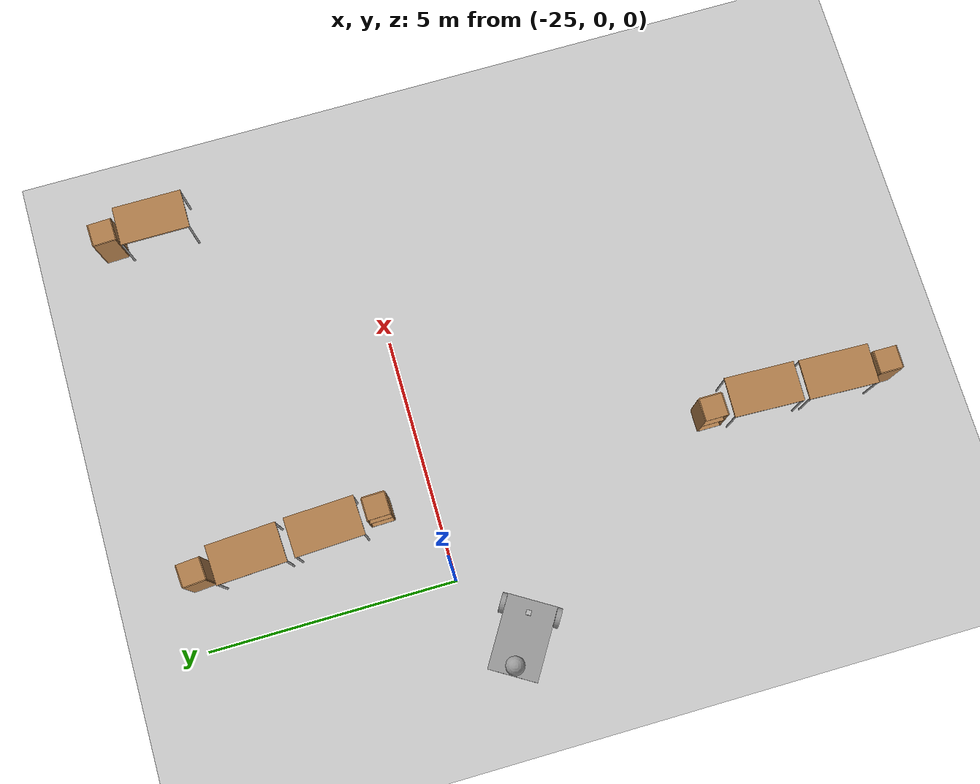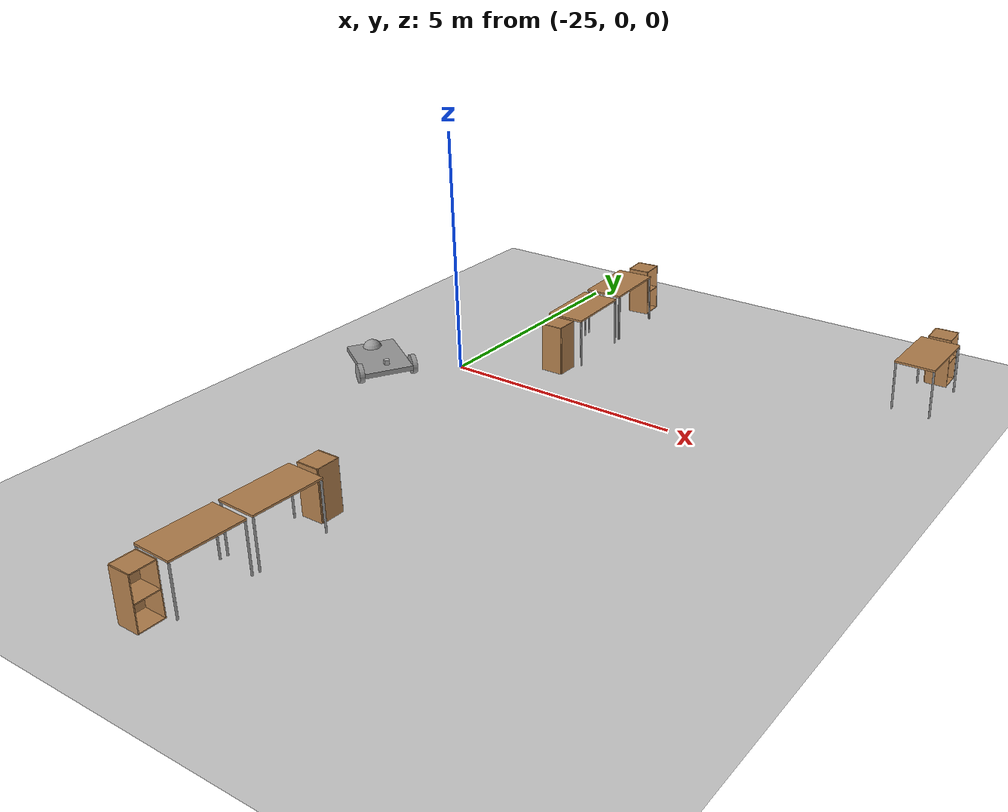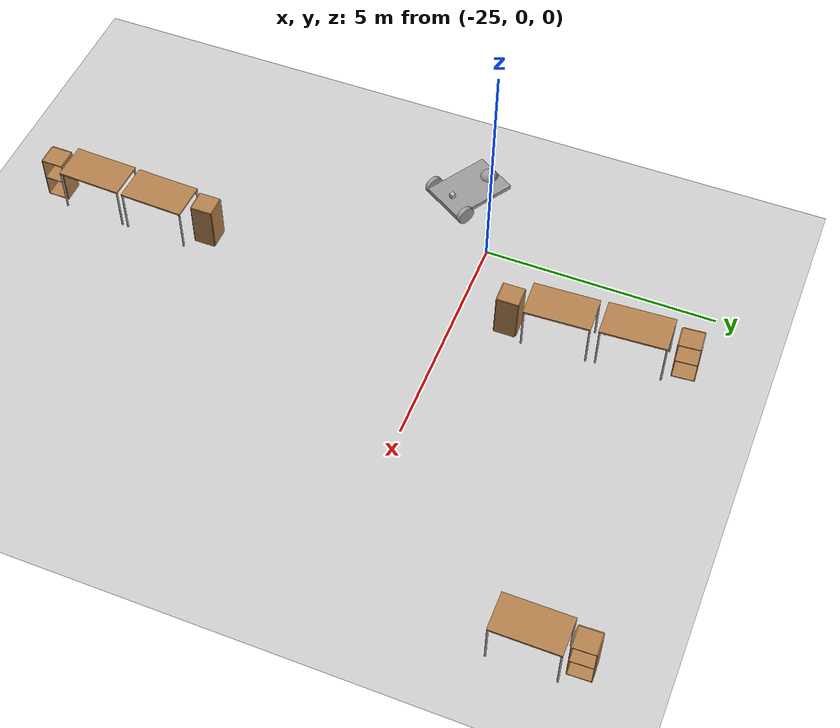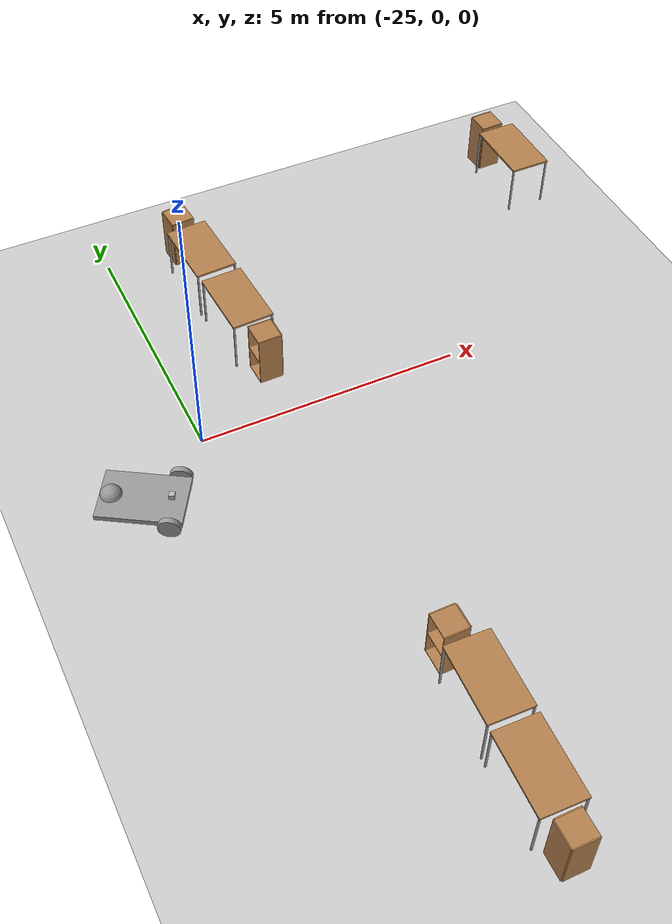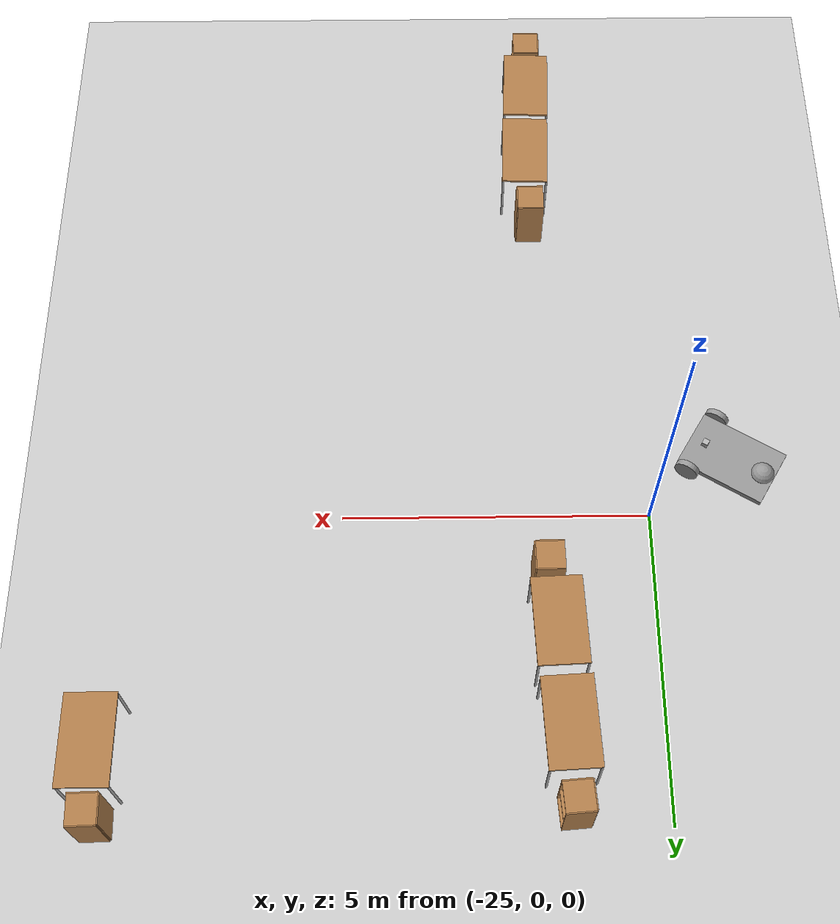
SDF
<sdf version="1.6">
 <world name="default">
  <model name="ground_plane">
   <static>1</static>
   <link name="link">
    <collision name="collision">
     <geometry><plane><normal>0 0 1</normal><size>100 100</size></plane></geometry>
     <surface><friction><ode><mu>100</mu><mu2>50</mu2></ode></friction></surface>
    </collision>
    <visual name="visual">
     <cast_shadows>0</cast_shadows>
     <geometry><plane><normal>0 0 1</normal><size>100 100</size></plane></geometry>
     <material>
      <script><uri>file://media/materials/scripts/gazebo.material</uri><name>Gazebo/Grey</name></script>
     </material>
    </visual>
   </link>
  </model>
  <model name="cabinet">
   <static>1</static>
   <link name="cabinet_bottom_plate">
    <inertial>
     <pose>0 0 -1 0 -0 0</pose>
     <inertia><ixx>2.05</ixx><ixy>0</ixy><ixz>0</ixz><iyy>2.05</iyy><iyz>0</iyz><izz>2.05</izz></inertia>
     <mass>25</mass>
    </inertial>
    <collision name="cabinet_bottom_plate_geom">
     <pose>0 0 0.01 0 -0 0</pose>
     <geometry><box><size>0.45 0.45 0.02</size></box></geometry>
    </collision>
    <visual name="cabinet_bottom_plate_geom_visual">
     <pose>0 0 0.01 0 -0 0</pose>
     <geometry><box><size>0.45 0.45 0.02</size></box></geometry>
     <material>
      <script><uri>file://media/materials/scripts/gazebo.material</uri><name>Gazebo/Wood</name></script>
     </material>
    </visual>
    <collision name="cabinet_bottom_plate_geom_cabinet_back_plate">
     <pose>0.235 0 0.51 0 -0 0</pose>
     <geometry><box><size>0.02 0.45 1.02</size></box></geometry>
    </collision>
    <visual name="cabinet_bottom_plate_geom_cabinet_back_plate_visual">
     <pose>0.235 0 0.51 0 -0 0</pose>
     <geometry><box><size>0.02 0.45 1.02</size></box></geometry>
     <material>
      <script><uri>file://media/materials/scripts/gazebo.material</uri><name>Gazebo/Wood</name></script>
     </material>
    </visual>
    <collision name="cabinet_bottom_plate_geom_cabinet_left_plate">
     <pose>0 0.235 0.51 0 -0 0</pose>
     <geometry><box><size>0.45 0.02 1.02</size></box></geometry>
    </collision>
    <visual name="cabinet_bottom_plate_geom_cabinet_left_plate_visual">
     <pose>0 0.235 0.51 0 -0 0</pose>
     <geometry><box><size>0.45 0.02 1.02</size></box></geometry>
     <material>
      <script><uri>file://media/materials/scripts/gazebo.material</uri><name>Gazebo/Wood</name></script>
     </material>
    </visual>
    <collision name="cabinet_bottom_plate_geom_cabinet_middle_plate">
     <pose>0 0 0.51 0 -0 0</pose>
     <geometry><box><size>0.45 0.45 0.02</size></box></geometry>
    </collision>
    <visual name="cabinet_bottom_plate_geom_cabinet_middle_plate_visual">
     <pose>0 0 0.51 0 -0 0</pose>
     <geometry><box><size>0.45 0.45 0.02</size></box></geometry>
     <material>
      <script><uri>file://media/materials/scripts/gazebo.material</uri><name>Gazebo/Wood</name></script>
     </material>
    </visual>
    <collision name="cabinet_bottom_plate_geom_cabinet_right_plate">
     <pose>0 -0.235 0.51 0 -0 0</pose>
     <geometry><box><size>0.45 0.02 1.02</size></box></geometry>
    </collision>
    <visual name="cabinet_bottom_plate_geom_cabinet_right_plate_visual">
     <pose>0 -0.235 0.51 0 -0 0</pose>
     <geometry><box><size>0.45 0.02 1.02</size></box></geometry>
     <material>
      <script><uri>file://media/materials/scripts/gazebo.material</uri><name>Gazebo/Wood</name></script>
     </material>
    </visual>
    <collision name="cabinet_bottom_plate_geom_cabinet_top_plate">
     <pose>0 0 1.01 0 -0 0</pose>
     <geometry><box><size>0.45 0.45 0.02</size></box></geometry>
    </collision>
    <visual name="cabinet_bottom_plate_geom_cabinet_top_plate_visual">
     <pose>0 0 1.01 0 -0 0</pose>
     <geometry><box><size>0.45 0.45 0.02</size></box></geometry>
     <material>
      <script><uri>file://media/materials/scripts/gazebo.material</uri><name>Gazebo/Wood</name></script>
     </material>
    </visual>
   </link>
   <pose>-23.2293 -5.67908 0 0 -0 0.000948</pose>
  </model>
  <model name="table">
   <static>0</static>
   <link name="link">
    <collision name="surface">
     <pose>0 0 1 0 -0 0</pose>
     <geometry><box><size>1.5 0.8 0.03</size></box></geometry>
     <surface><friction><ode><mu>0.6</mu><mu2>0.6</mu2></ode></friction></surface>
    </collision>
    <visual name="visual1">
     <pose>0 0 1 0 -0 0</pose>
     <geometry><box><size>1.4 0.8 0.04</size></box></geometry>
     <material>
      <script><uri>file://media/materials/scripts/gazebo.material</uri><name>Gazebo/Wood</name></script>
     </material>
    </visual>
    <collision name="front_left_leg">
     <pose>0.68 0.38 0.5 0 -0 0</pose>
     <geometry><cylinder><radius>0.02</radius><length>1</length></cylinder></geometry>
    </collision>
    <visual name="front_left_leg">
     <pose>0.68 0.38 0.5 0 -0 0</pose>
     <geometry><cylinder><radius>0.02</radius><length>1</length></cylinder></geometry>
     <material>
      <script><uri>file://media/materials/scripts/gazebo.material</uri><name>Gazebo/Grey</name></script>
     </material>
    </visual>
    <collision name="front_right_leg">
     <pose>0.68 -0.38 0.5 0 -0 0</pose>
     <geometry><cylinder><radius>0.02</radius><length>1</length></cylinder></geometry>
    </collision>
    <visual name="front_right_leg">
     <pose>0.68 -0.38 0.5 0 -0 0</pose>
     <geometry><cylinder><radius>0.02</radius><length>1</length></cylinder></geometry>
     <material>
      <script><uri>file://media/materials/scripts/gazebo.material</uri><name>Gazebo/Grey</name></script>
     </material>
    </visual>
    <collision name="back_right_leg">
     <pose>-0.68 -0.38 0.5 0 -0 0</pose>
     <geometry><cylinder><radius>0.02</radius><length>1</length></cylinder></geometry>
    </collision>
    <visual name="back_right_leg">
     <pose>-0.68 -0.38 0.5 0 -0 0</pose>
     <geometry><cylinder><radius>0.02</radius><length>1</length></cylinder></geometry>
     <material>
      <script><uri>file://media/materials/scripts/gazebo.material</uri><name>Gazebo/Grey</name></script>
     </material>
    </visual>
    <collision name="back_left_leg">
     <pose>-0.68 0.38 0.5 0 -0 0</pose>
     <geometry><cylinder><radius>0.02</radius><length>1</length></cylinder></geometry>
    </collision>
    <visual name="back_left_leg">
     <pose>-0.68 0.38 0.5 0 -0 0</pose>
     <geometry><cylinder><radius>0.02</radius><length>1</length></cylinder></geometry>
     <material>
      <script><uri>file://media/materials/scripts/gazebo.material</uri><name>Gazebo/Grey</name></script>
     </material>
    </visual>
    <inertial>
     <inertia><ixx>1</ixx><ixy>0</ixy><ixz>0</ixz><iyy>1</iyy><iyz>0</iyz><izz>1</izz></inertia>
     <mass>1</mass>
    </inertial>
   </link>
   <pose>-23.227 -8.22913 -1e-06 -0 1e-06 -1.60622</pose>
  </model>
  <model name="table_clone">
   <static>0</static>
   <link name="link">
    <collision name="surface">
     <pose>0 0 1 0 -0 0</pose>
     <geometry><box><size>1.5 0.8 0.03</size></box></geometry>
     <surface><friction><ode><mu>0.6</mu><mu2>0.6</mu2></ode></friction></surface>
    </collision>
    <visual name="visual1">
     <pose>0 0 1 0 -0 0</pose>
     <geometry><box><size>1.4 0.8 0.04</size></box></geometry>
     <material>
      <script><uri>file://media/materials/scripts/gazebo.material</uri><name>Gazebo/Wood</name></script>
     </material>
    </visual>
    <collision name="front_left_leg">
     <pose>0.68 0.38 0.5 0 -0 0</pose>
     <geometry><cylinder><radius>0.02</radius><length>1</length></cylinder></geometry>
    </collision>
    <visual name="front_left_leg">
     <pose>0.68 0.38 0.5 0 -0 0</pose>
     <geometry><cylinder><radius>0.02</radius><length>1</length></cylinder></geometry>
     <material>
      <script><uri>file://media/materials/scripts/gazebo.material</uri><name>Gazebo/Grey</name></script>
     </material>
    </visual>
    <collision name="front_right_leg">
     <pose>0.68 -0.38 0.5 0 -0 0</pose>
     <geometry><cylinder><radius>0.02</radius><length>1</length></cylinder></geometry>
    </collision>
    <visual name="front_right_leg">
     <pose>0.68 -0.38 0.5 0 -0 0</pose>
     <geometry><cylinder><radius>0.02</radius><length>1</length></cylinder></geometry>
     <material>
      <script><uri>file://media/materials/scripts/gazebo.material</uri><name>Gazebo/Grey</name></script>
     </material>
    </visual>
    <collision name="back_right_leg">
     <pose>-0.68 -0.38 0.5 0 -0 0</pose>
     <geometry><cylinder><radius>0.02</radius><length>1</length></cylinder></geometry>
    </collision>
    <visual name="back_right_leg">
     <pose>-0.68 -0.38 0.5 0 -0 0</pose>
     <geometry><cylinder><radius>0.02</radius><length>1</length></cylinder></geometry>
     <material>
      <script><uri>file://media/materials/scripts/gazebo.material</uri><name>Gazebo/Grey</name></script>
     </material>
    </visual>
    <collision name="back_left_leg">
     <pose>-0.68 0.38 0.5 0 -0 0</pose>
     <geometry><cylinder><radius>0.02</radius><length>1</length></cylinder></geometry>
    </collision>
    <visual name="back_left_leg">
     <pose>-0.68 0.38 0.5 0 -0 0</pose>
     <geometry><cylinder><radius>0.02</radius><length>1</length></cylinder></geometry>
     <material>
      <script><uri>file://media/materials/scripts/gazebo.material</uri><name>Gazebo/Grey</name></script>
     </material>
    </visual>
    <inertial>
     <inertia><ixx>1</ixx><ixy>0</ixy><ixz>0</ixz><iyy>1</iyy><iyz>0</iyz><izz>1</izz></inertia>
     <mass>1</mass>
    </inertial>
   </link>
   <pose>-23.4772 3.6839 -9e-06 1e-06 -0 1.62339</pose>
  </model>
  <model name="table_clone_0">
   <static>0</static>
   <link name="link">
    <collision name="surface">
     <pose>0 0 1 0 -0 0</pose>
     <geometry><box><size>1.5 0.8 0.03</size></box></geometry>
     <surface><friction><ode><mu>0.6</mu><mu2>0.6</mu2></ode></friction></surface>
    </collision>
    <visual name="visual1">
     <pose>0 0 1 0 -0 0</pose>
     <geometry><box><size>1.4 0.8 0.04</size></box></geometry>
     <material>
      <script><uri>file://media/materials/scripts/gazebo.material</uri><name>Gazebo/Wood</name></script>
     </material>
    </visual>
    <collision name="front_left_leg">
     <pose>0.68 0.38 0.5 0 -0 0</pose>
     <geometry><cylinder><radius>0.02</radius><length>1</length></cylinder></geometry>
    </collision>
    <visual name="front_left_leg">
     <pose>0.68 0.38 0.5 0 -0 0</pose>
     <geometry><cylinder><radius>0.02</radius><length>1</length></cylinder></geometry>
     <material>
      <script><uri>file://media/materials/scripts/gazebo.material</uri><name>Gazebo/Grey</name></script>
     </material>
    </visual>
    <collision name="front_right_leg">
     <pose>0.68 -0.38 0.5 0 -0 0</pose>
     <geometry><cylinder><radius>0.02</radius><length>1</length></cylinder></geometry>
    </collision>
    <visual name="front_right_leg">
     <pose>0.68 -0.38 0.5 0 -0 0</pose>
     <geometry><cylinder><radius>0.02</radius><length>1</length></cylinder></geometry>
     <material>
      <script><uri>file://media/materials/scripts/gazebo.material</uri><name>Gazebo/Grey</name></script>
     </material>
    </visual>
    <collision name="back_right_leg">
     <pose>-0.68 -0.38 0.5 0 -0 0</pose>
     <geometry><cylinder><radius>0.02</radius><length>1</length></cylinder></geometry>
    </collision>
    <visual name="back_right_leg">
     <pose>-0.68 -0.38 0.5 0 -0 0</pose>
     <geometry><cylinder><radius>0.02</radius><length>1</length></cylinder></geometry>
     <material>
      <script><uri>file://media/materials/scripts/gazebo.material</uri><name>Gazebo/Grey</name></script>
     </material>
    </visual>
    <collision name="back_left_leg">
     <pose>-0.68 0.38 0.5 0 -0 0</pose>
     <geometry><cylinder><radius>0.02</radius><length>1</length></cylinder></geometry>
    </collision>
    <visual name="back_left_leg">
     <pose>-0.68 0.38 0.5 0 -0 0</pose>
     <geometry><cylinder><radius>0.02</radius><length>1</length></cylinder></geometry>
     <material>
      <script><uri>file://media/materials/scripts/gazebo.material</uri><name>Gazebo/Grey</name></script>
     </material>
    </visual>
    <inertial>
     <inertia><ixx>1</ixx><ixy>0</ixy><ixz>0</ixz><iyy>1</iyy><iyz>0</iyz><izz>1</izz></inertia>
     <mass>1</mass>
    </inertial>
   </link>
   <pose>-23.1636 -6.73043 -8e-06 0 0 -1.60622</pose>
  </model>
  <model name="table_clone_clone">
   <static>0</static>
   <link name="link">
    <collision name="surface">
     <pose>0 0 1 0 -0 0</pose>
     <geometry><box><size>1.5 0.8 0.03</size></box></geometry>
     <surface><friction><ode><mu>0.6</mu><mu2>0.6</mu2></ode></friction></surface>
    </collision>
    <visual name="visual1">
     <pose>0 0 1 0 -0 0</pose>
     <geometry><box><size>1.4 0.8 0.04</size></box></geometry>
     <material>
      <script><uri>file://media/materials/scripts/gazebo.material</uri><name>Gazebo/Wood</name></script>
     </material>
    </visual>
    <collision name="front_left_leg">
     <pose>0.68 0.38 0.5 0 -0 0</pose>
     <geometry><cylinder><radius>0.02</radius><length>1</length></cylinder></geometry>
    </collision>
    <visual name="front_left_leg">
     <pose>0.68 0.38 0.5 0 -0 0</pose>
     <geometry><cylinder><radius>0.02</radius><length>1</length></cylinder></geometry>
     <material>
      <script><uri>file://media/materials/scripts/gazebo.material</uri><name>Gazebo/Grey</name></script>
     </material>
    </visual>
    <collision name="front_right_leg">
     <pose>0.68 -0.38 0.5 0 -0 0</pose>
     <geometry><cylinder><radius>0.02</radius><length>1</length></cylinder></geometry>
    </collision>
    <visual name="front_right_leg">
     <pose>0.68 -0.38 0.5 0 -0 0</pose>
     <geometry><cylinder><radius>0.02</radius><length>1</length></cylinder></geometry>
     <material>
      <script><uri>file://media/materials/scripts/gazebo.material</uri><name>Gazebo/Grey</name></script>
     </material>
    </visual>
    <collision name="back_right_leg">
     <pose>-0.68 -0.38 0.5 0 -0 0</pose>
     <geometry><cylinder><radius>0.02</radius><length>1</length></cylinder></geometry>
    </collision>
    <visual name="back_right_leg">
     <pose>-0.68 -0.38 0.5 0 -0 0</pose>
     <geometry><cylinder><radius>0.02</radius><length>1</length></cylinder></geometry>
     <material>
      <script><uri>file://media/materials/scripts/gazebo.material</uri><name>Gazebo/Grey</name></script>
     </material>
    </visual>
    <collision name="back_left_leg">
     <pose>-0.68 0.38 0.5 0 -0 0</pose>
     <geometry><cylinder><radius>0.02</radius><length>1</length></cylinder></geometry>
    </collision>
    <visual name="back_left_leg">
     <pose>-0.68 0.38 0.5 0 -0 0</pose>
     <geometry><cylinder><radius>0.02</radius><length>1</length></cylinder></geometry>
     <material>
      <script><uri>file://media/materials/scripts/gazebo.material</uri><name>Gazebo/Grey</name></script>
     </material>
    </visual>
    <inertial>
     <inertia><ixx>1</ixx><ixy>0</ixy><ixz>0</ixz><iyy>1</iyy><iyz>0</iyz><izz>1</izz></inertia>
     <mass>1</mass>
    </inertial>
   </link>
   <pose>-23.3855 2.13103 -2e-06 0 -0 1.61497</pose>
  </model>
  <model name="cabinet_clone">
   <static>1</static>
   <link name="cabinet_bottom_plate">
    <inertial>
     <pose>0 0 -1 0 -0 0</pose>
     <inertia><ixx>2.05</ixx><ixy>0</ixy><ixz>0</ixz><iyy>2.05</iyy><iyz>0</iyz><izz>2.05</izz></inertia>
     <mass>25</mass>
    </inertial>
    <collision name="cabinet_bottom_plate_geom">
     <pose>0 0 0.01 0 -0 0</pose>
     <geometry><box><size>0.45 0.45 0.02</size></box></geometry>
    </collision>
    <visual name="cabinet_bottom_plate_geom_visual">
     <pose>0 0 0.01 0 -0 0</pose>
     <geometry><box><size>0.45 0.45 0.02</size></box></geometry>
     <material>
      <script><uri>file://media/materials/scripts/gazebo.material</uri><name>Gazebo/Wood</name></script>
     </material>
    </visual>
    <collision name="cabinet_bottom_plate_geom_cabinet_back_plate">
     <pose>0.235 0 0.51 0 -0 0</pose>
     <geometry><box><size>0.02 0.45 1.02</size></box></geometry>
    </collision>
    <visual name="cabinet_bottom_plate_geom_cabinet_back_plate_visual">
     <pose>0.235 0 0.51 0 -0 0</pose>
     <geometry><box><size>0.02 0.45 1.02</size></box></geometry>
     <material>
      <script><uri>file://media/materials/scripts/gazebo.material</uri><name>Gazebo/Wood</name></script>
     </material>
    </visual>
    <collision name="cabinet_bottom_plate_geom_cabinet_left_plate">
     <pose>0 0.235 0.51 0 -0 0</pose>
     <geometry><box><size>0.45 0.02 1.02</size></box></geometry>
    </collision>
    <visual name="cabinet_bottom_plate_geom_cabinet_left_plate_visual">
     <pose>0 0.235 0.51 0 -0 0</pose>
     <geometry><box><size>0.45 0.02 1.02</size></box></geometry>
     <material>
      <script><uri>file://media/materials/scripts/gazebo.material</uri><name>Gazebo/Wood</name></script>
     </material>
    </visual>
    <collision name="cabinet_bottom_plate_geom_cabinet_middle_plate">
     <pose>0 0 0.51 0 -0 0</pose>
     <geometry><box><size>0.45 0.45 0.02</size></box></geometry>
    </collision>
    <visual name="cabinet_bottom_plate_geom_cabinet_middle_plate_visual">
     <pose>0 0 0.51 0 -0 0</pose>
     <geometry><box><size>0.45 0.45 0.02</size></box></geometry>
     <material>
      <script><uri>file://media/materials/scripts/gazebo.material</uri><name>Gazebo/Wood</name></script>
     </material>
    </visual>
    <collision name="cabinet_bottom_plate_geom_cabinet_right_plate">
     <pose>0 -0.235 0.51 0 -0 0</pose>
     <geometry><box><size>0.45 0.02 1.02</size></box></geometry>
    </collision>
    <visual name="cabinet_bottom_plate_geom_cabinet_right_plate_visual">
     <pose>0 -0.235 0.51 0 -0 0</pose>
     <geometry><box><size>0.45 0.02 1.02</size></box></geometry>
     <material>
      <script><uri>file://media/materials/scripts/gazebo.material</uri><name>Gazebo/Wood</name></script>
     </material>
    </visual>
    <collision name="cabinet_bottom_plate_geom_cabinet_top_plate">
     <pose>0 0 1.01 0 -0 0</pose>
     <geometry><box><size>0.45 0.45 0.02</size></box></geometry>
    </collision>
    <visual name="cabinet_bottom_plate_geom_cabinet_top_plate_visual">
     <pose>0 0 1.01 0 -0 0</pose>
     <geometry><box><size>0.45 0.45 0.02</size></box></geometry>
     <material>
      <script><uri>file://media/materials/scripts/gazebo.material</uri><name>Gazebo/Wood</name></script>
     </material>
    </visual>
   </link>
   <pose>-23.5321 4.76626 0.017437 0 0 -3.06279</pose>
  </model>
  <model name="cabinet_clone_clone">
   <static>1</static>
   <link name="cabinet_bottom_plate">
    <inertial>
     <pose>0 0 -1 0 -0 0</pose>
     <inertia><ixx>2.05</ixx><ixy>0</ixy><ixz>0</ixz><iyy>2.05</iyy><iyz>0</iyz><izz>2.05</izz></inertia>
     <mass>25</mass>
    </inertial>
    <collision name="cabinet_bottom_plate_geom">
     <pose>0 0 0.01 0 -0 0</pose>
     <geometry><box><size>0.45 0.45 0.02</size></box></geometry>
    </collision>
    <visual name="cabinet_bottom_plate_geom_visual">
     <pose>0 0 0.01 0 -0 0</pose>
     <geometry><box><size>0.45 0.45 0.02</size></box></geometry>
     <material>
      <script><uri>file://media/materials/scripts/gazebo.material</uri><name>Gazebo/Wood</name></script>
     </material>
    </visual>
    <collision name="cabinet_bottom_plate_geom_cabinet_back_plate">
     <pose>0.235 0 0.51 0 -0 0</pose>
     <geometry><box><size>0.02 0.45 1.02</size></box></geometry>
    </collision>
    <visual name="cabinet_bottom_plate_geom_cabinet_back_plate_visual">
     <pose>0.235 0 0.51 0 -0 0</pose>
     <geometry><box><size>0.02 0.45 1.02</size></box></geometry>
     <material>
      <script><uri>file://media/materials/scripts/gazebo.material</uri><name>Gazebo/Wood</name></script>
     </material>
    </visual>
    <collision name="cabinet_bottom_plate_geom_cabinet_left_plate">
     <pose>0 0.235 0.51 0 -0 0</pose>
     <geometry><box><size>0.45 0.02 1.02</size></box></geometry>
    </collision>
    <visual name="cabinet_bottom_plate_geom_cabinet_left_plate_visual">
     <pose>0 0.235 0.51 0 -0 0</pose>
     <geometry><box><size>0.45 0.02 1.02</size></box></geometry>
     <material>
      <script><uri>file://media/materials/scripts/gazebo.material</uri><name>Gazebo/Wood</name></script>
     </material>
    </visual>
    <collision name="cabinet_bottom_plate_geom_cabinet_middle_plate">
     <pose>0 0 0.51 0 -0 0</pose>
     <geometry><box><size>0.45 0.45 0.02</size></box></geometry>
    </collision>
    <visual name="cabinet_bottom_plate_geom_cabinet_middle_plate_visual">
     <pose>0 0 0.51 0 -0 0</pose>
     <geometry><box><size>0.45 0.45 0.02</size></box></geometry>
     <material>
      <script><uri>file://media/materials/scripts/gazebo.material</uri><name>Gazebo/Wood</name></script>
     </material>
    </visual>
    <collision name="cabinet_bottom_plate_geom_cabinet_right_plate">
     <pose>0 -0.235 0.51 0 -0 0</pose>
     <geometry><box><size>0.45 0.02 1.02</size></box></geometry>
    </collision>
    <visual name="cabinet_bottom_plate_geom_cabinet_right_plate_visual">
     <pose>0 -0.235 0.51 0 -0 0</pose>
     <geometry><box><size>0.45 0.02 1.02</size></box></geometry>
     <material>
      <script><uri>file://media/materials/scripts/gazebo.material</uri><name>Gazebo/Wood</name></script>
     </material>
    </visual>
    <collision name="cabinet_bottom_plate_geom_cabinet_top_plate">
     <pose>0 0 1.01 0 -0 0</pose>
     <geometry><box><size>0.45 0.45 0.02</size></box></geometry>
    </collision>
    <visual name="cabinet_bottom_plate_geom_cabinet_top_plate_visual">
     <pose>0 0 1.01 0 -0 0</pose>
     <geometry><box><size>0.45 0.45 0.02</size></box></geometry>
     <material>
      <script><uri>file://media/materials/scripts/gazebo.material</uri><name>Gazebo/Wood</name></script>
     </material>
    </visual>
   </link>
   <pose>-23.2868 1.07698 0.017437 -0.01053 -0.000628 0.017723</pose>
  </model>
  <model name="cabinet_clone_clone_0">
   <static>1</static>
   <link name="cabinet_bottom_plate">
    <inertial>
     <pose>0 0 -1 0 -0 0</pose>
     <inertia><ixx>2.05</ixx><ixy>0</ixy><ixz>0</ixz><iyy>2.05</iyy><iyz>0</iyz><izz>2.05</izz></inertia>
     <mass>25</mass>
    </inertial>
    <collision name="cabinet_bottom_plate_geom">
     <pose>0 0 0.01 0 -0 0</pose>
     <geometry><box><size>0.45 0.45 0.02</size></box></geometry>
    </collision>
    <visual name="cabinet_bottom_plate_geom_visual">
     <pose>0 0 0.01 0 -0 0</pose>
     <geometry><box><size>0.45 0.45 0.02</size></box></geometry>
     <material>
      <script><uri>file://media/materials/scripts/gazebo.material</uri><name>Gazebo/Wood</name></script>
     </material>
    </visual>
    <collision name="cabinet_bottom_plate_geom_cabinet_back_plate">
     <pose>0.235 0 0.51 0 -0 0</pose>
     <geometry><box><size>0.02 0.45 1.02</size></box></geometry>
    </collision>
    <visual name="cabinet_bottom_plate_geom_cabinet_back_plate_visual">
     <pose>0.235 0 0.51 0 -0 0</pose>
     <geometry><box><size>0.02 0.45 1.02</size></box></geometry>
     <material>
      <script><uri>file://media/materials/scripts/gazebo.material</uri><name>Gazebo/Wood</name></script>
     </material>
    </visual>
    <collision name="cabinet_bottom_plate_geom_cabinet_left_plate">
     <pose>0 0.235 0.51 0 -0 0</pose>
     <geometry><box><size>0.45 0.02 1.02</size></box></geometry>
    </collision>
    <visual name="cabinet_bottom_plate_geom_cabinet_left_plate_visual">
     <pose>0 0.235 0.51 0 -0 0</pose>
     <geometry><box><size>0.45 0.02 1.02</size></box></geometry>
     <material>
      <script><uri>file://media/materials/scripts/gazebo.material</uri><name>Gazebo/Wood</name></script>
     </material>
    </visual>
    <collision name="cabinet_bottom_plate_geom_cabinet_middle_plate">
     <pose>0 0 0.51 0 -0 0</pose>
     <geometry><box><size>0.45 0.45 0.02</size></box></geometry>
    </collision>
    <visual name="cabinet_bottom_plate_geom_cabinet_middle_plate_visual">
     <pose>0 0 0.51 0 -0 0</pose>
     <geometry><box><size>0.45 0.45 0.02</size></box></geometry>
     <material>
      <script><uri>file://media/materials/scripts/gazebo.material</uri><name>Gazebo/Wood</name></script>
     </material>
    </visual>
    <collision name="cabinet_bottom_plate_geom_cabinet_right_plate">
     <pose>0 -0.235 0.51 0 -0 0</pose>
     <geometry><box><size>0.45 0.02 1.02</size></box></geometry>
    </collision>
    <visual name="cabinet_bottom_plate_geom_cabinet_right_plate_visual">
     <pose>0 -0.235 0.51 0 -0 0</pose>
     <geometry><box><size>0.45 0.02 1.02</size></box></geometry>
     <material>
      <script><uri>file://media/materials/scripts/gazebo.material</uri><name>Gazebo/Wood</name></script>
     </material>
    </visual>
    <collision name="cabinet_bottom_plate_geom_cabinet_top_plate">
     <pose>0 0 1.01 0 -0 0</pose>
     <geometry><box><size>0.45 0.45 0.02</size></box></geometry>
    </collision>
    <visual name="cabinet_bottom_plate_geom_cabinet_top_plate_visual">
     <pose>0 0 1.01 0 -0 0</pose>
     <geometry><box><size>0.45 0.45 0.02</size></box></geometry>
     <material>
      <script><uri>file://media/materials/scripts/gazebo.material</uri><name>Gazebo/Wood</name></script>
     </material>
    </visual>
   </link>
   <pose>-16.504 4.88239 0.017437 0 0 -3.10692</pose>
  </model>
  <model name="table_clone_clone_0">
   <static>0</static>
   <link name="link">
    <collision name="surface">
     <pose>0 0 1 0 -0 0</pose>
     <geometry><box><size>1.5 0.8 0.03</size></box></geometry>
     <surface><friction><ode><mu>0.6</mu><mu2>0.6</mu2></ode></friction></surface>
    </collision>
    <visual name="visual1">
     <pose>0 0 1 0 -0 0</pose>
     <geometry><box><size>1.4 0.8 0.04</size></box></geometry>
     <material>
      <script><uri>file://media/materials/scripts/gazebo.material</uri><name>Gazebo/Wood</name></script>
     </material>
    </visual>
    <collision name="front_left_leg">
     <pose>0.68 0.38 0.5 0 -0 0</pose>
     <geometry><cylinder><radius>0.02</radius><length>1</length></cylinder></geometry>
    </collision>
    <visual name="front_left_leg">
     <pose>0.68 0.38 0.5 0 -0 0</pose>
     <geometry><cylinder><radius>0.02</radius><length>1</length></cylinder></geometry>
     <material>
      <script><uri>file://media/materials/scripts/gazebo.material</uri><name>Gazebo/Grey</name></script>
     </material>
    </visual>
    <collision name="front_right_leg">
     <pose>0.68 -0.38 0.5 0 -0 0</pose>
     <geometry><cylinder><radius>0.02</radius><length>1</length></cylinder></geometry>
    </collision>
    <visual name="front_right_leg">
     <pose>0.68 -0.38 0.5 0 -0 0</pose>
     <geometry><cylinder><radius>0.02</radius><length>1</length></cylinder></geometry>
     <material>
      <script><uri>file://media/materials/scripts/gazebo.material</uri><name>Gazebo/Grey</name></script>
     </material>
    </visual>
    <collision name="back_right_leg">
     <pose>-0.68 -0.38 0.5 0 -0 0</pose>
     <geometry><cylinder><radius>0.02</radius><length>1</length></cylinder></geometry>
    </collision>
    <visual name="back_right_leg">
     <pose>-0.68 -0.38 0.5 0 -0 0</pose>
     <geometry><cylinder><radius>0.02</radius><length>1</length></cylinder></geometry>
     <material>
      <script><uri>file://media/materials/scripts/gazebo.material</uri><name>Gazebo/Grey</name></script>
     </material>
    </visual>
    <collision name="back_left_leg">
     <pose>-0.68 0.38 0.5 0 -0 0</pose>
     <geometry><cylinder><radius>0.02</radius><length>1</length></cylinder></geometry>
    </collision>
    <visual name="back_left_leg">
     <pose>-0.68 0.38 0.5 0 -0 0</pose>
     <geometry><cylinder><radius>0.02</radius><length>1</length></cylinder></geometry>
     <material>
      <script><uri>file://media/materials/scripts/gazebo.material</uri><name>Gazebo/Grey</name></script>
     </material>
    </visual>
    <inertial>
     <inertia><ixx>1</ixx><ixy>0</ixy><ixz>0</ixz><iyy>1</iyy><iyz>0</iyz><izz>1</izz></inertia>
     <mass>1</mass>
    </inertial>
   </link>
   <pose>-16.4627 3.87988 -1e-06 -1e-06 1e-06 1.57136</pose>
  </model>
  <model name="cabinet_clone_0">
   <static>1</static>
   <link name="cabinet_bottom_plate">
    <inertial>
     <pose>0 0 -1 0 -0 0</pose>
     <inertia><ixx>2.05</ixx><ixy>0</ixy><ixz>0</ixz><iyy>2.05</iyy><iyz>0</iyz><izz>2.05</izz></inertia>
     <mass>25</mass>
    </inertial>
    <collision name="cabinet_bottom_plate_geom">
     <pose>0 0 0.01 0 -0 0</pose>
     <geometry><box><size>0.45 0.45 0.02</size></box></geometry>
    </collision>
    <visual name="cabinet_bottom_plate_geom_visual">
     <pose>0 0 0.01 0 -0 0</pose>
     <geometry><box><size>0.45 0.45 0.02</size></box></geometry>
     <material>
      <script><uri>file://media/materials/scripts/gazebo.material</uri><name>Gazebo/Wood</name></script>
     </material>
    </visual>
    <collision name="cabinet_bottom_plate_geom_cabinet_back_plate">
     <pose>0.235 0 0.51 0 -0 0</pose>
     <geometry><box><size>0.02 0.45 1.02</size></box></geometry>
    </collision>
    <visual name="cabinet_bottom_plate_geom_cabinet_back_plate_visual">
     <pose>0.235 0 0.51 0 -0 0</pose>
     <geometry><box><size>0.02 0.45 1.02</size></box></geometry>
     <material>
      <script><uri>file://media/materials/scripts/gazebo.material</uri><name>Gazebo/Wood</name></script>
     </material>
    </visual>
    <collision name="cabinet_bottom_plate_geom_cabinet_left_plate">
     <pose>0 0.235 0.51 0 -0 0</pose>
     <geometry><box><size>0.45 0.02 1.02</size></box></geometry>
    </collision>
    <visual name="cabinet_bottom_plate_geom_cabinet_left_plate_visual">
     <pose>0 0.235 0.51 0 -0 0</pose>
     <geometry><box><size>0.45 0.02 1.02</size></box></geometry>
     <material>
      <script><uri>file://media/materials/scripts/gazebo.material</uri><name>Gazebo/Wood</name></script>
     </material>
    </visual>
    <collision name="cabinet_bottom_plate_geom_cabinet_middle_plate">
     <pose>0 0 0.51 0 -0 0</pose>
     <geometry><box><size>0.45 0.45 0.02</size></box></geometry>
    </collision>
    <visual name="cabinet_bottom_plate_geom_cabinet_middle_plate_visual">
     <pose>0 0 0.51 0 -0 0</pose>
     <geometry><box><size>0.45 0.45 0.02</size></box></geometry>
     <material>
      <script><uri>file://media/materials/scripts/gazebo.material</uri><name>Gazebo/Wood</name></script>
     </material>
    </visual>
    <collision name="cabinet_bottom_plate_geom_cabinet_right_plate">
     <pose>0 -0.235 0.51 0 -0 0</pose>
     <geometry><box><size>0.45 0.02 1.02</size></box></geometry>
    </collision>
    <visual name="cabinet_bottom_plate_geom_cabinet_right_plate_visual">
     <pose>0 -0.235 0.51 0 -0 0</pose>
     <geometry><box><size>0.45 0.02 1.02</size></box></geometry>
     <material>
      <script><uri>file://media/materials/scripts/gazebo.material</uri><name>Gazebo/Wood</name></script>
     </material>
    </visual>
    <collision name="cabinet_bottom_plate_geom_cabinet_top_plate">
     <pose>0 0 1.01 0 -0 0</pose>
     <geometry><box><size>0.45 0.45 0.02</size></box></geometry>
    </collision>
    <visual name="cabinet_bottom_plate_geom_cabinet_top_plate_visual">
     <pose>0 0 1.01 0 -0 0</pose>
     <geometry><box><size>0.45 0.45 0.02</size></box></geometry>
     <material>
      <script><uri>file://media/materials/scripts/gazebo.material</uri><name>Gazebo/Wood</name></script>
     </material>
    </visual>
   </link>
   <pose>-23.2584 -9.22941 0 0 -0 3.13215</pose>
  </model>
  <model name="chassis_robot_with_camera_clone">
   <link name="link_0">
    <pose>0.207166 0.002354 -0.014274 0 -0 0</pose>
    <inertial>
     <mass>1</mass>
     <inertia>
      <ixx>0.166667</ixx>
      <ixy>0</ixy>
      <ixz>0</ixz>
      <iyy>0.166667</iyy>
      <iyz>0</iyz>
      <izz>0.166667</izz>
     </inertia>
    </inertial>
    <visual name="visual">
     <geometry><box><size>1.5 1 0.1</size></box></geometry>
     <material>
      <lighting>1</lighting>
      <script><uri>file://media/materials/scripts/gazebo.material</uri><name>Gazebo/Grey</name></script>
      <ambient>0.3 0.3 0.3 1</ambient>
      <diffuse>0.7 0.7 0.7 1</diffuse>
      <specular>0.01 0.01 0.01 1</specular>
      <emissive>0 0 0 1</emissive>
      <shader type="vertex"><normal_map>__default__</normal_map></shader>
     </material>
    </visual>
    <collision name="collision">
     <geometry><box><size>1.5 1 0.1</size></box></geometry>
     <surface>
      <friction>
       <ode><mu>1</mu><mu2>1</mu2><fdir1>0 0 0</fdir1><slip1>0</slip1><slip2>0</slip2></ode>
       <torsional>
        <coefficient>1</coefficient>
        <patch_radius>0</patch_radius>
        <surface_radius>0</surface_radius>
        <use_patch_radius>1</use_patch_radius>
        <ode><slip>0</slip></ode>
       </torsional>
      </friction>
      <bounce><restitution_coefficient>0</restitution_coefficient><threshold>1e+06</threshold></bounce>
      <contact>
       <collide_without_contact>0</collide_without_contact>
       <collide_without_contact_bitmask>1</collide_without_contact_bitmask>
       <collide_bitmask>1</collide_bitmask>
       <ode>
        <soft_cfm>0</soft_cfm>
        <soft_erp>0.2</soft_erp>
        <kp>1e+13</kp>
        <kd>1</kd>
        <max_vel>0.01</max_vel>
        <min_depth>0</min_depth>
       </ode>
       <bullet>
        <split_impulse>1</split_impulse>
        <split_impulse_penetration_threshold>-0.01</split_impulse_penetration_threshold>
        <soft_cfm>0</soft_cfm>
        <soft_erp>0.2</soft_erp>
        <kp>1e+13</kp>
        <kd>1</kd>
       </bullet>
      </contact>
     </surface>
    </collision>
   </link>
   <link name="link_1_clone_clone">
    <pose>-0.341329 -0.545673 -0.014219 1.5707 -0 0</pose>
    <inertial>
     <mass>1</mass>
     <inertia><ixx>0.145833</ixx><ixy>0</ixy><ixz>0</ixz><iyy>0.145833</iyy><iyz>0</iyz><izz>0.125</izz></inertia>
    </inertial>
    <visual name="visual">
     <geometry><cylinder><radius>0.2</radius><length>0.1</length></cylinder></geometry>
     <material>
      <lighting>1</lighting>
      <script><uri>file://media/materials/scripts/gazebo.material</uri><name>Gazebo/Grey</name></script>
      <ambient>0.3 0.3 0.3 1</ambient>
      <diffuse>0.7 0.7 0.7 1</diffuse>
      <specular>0.01 0.01 0.01 1</specular>
      <emissive>0 0 0 1</emissive>
      <shader type="vertex"><normal_map>__default__</normal_map></shader>
     </material>
    </visual>
    <collision name="collision">
     <geometry><cylinder><radius>0.2</radius><length>0.1</length></cylinder></geometry>
     <surface>
      <friction>
       <ode><mu>1</mu><mu2>1</mu2><fdir1>0 0 0</fdir1><slip1>0</slip1><slip2>0</slip2></ode>
       <torsional>
        <coefficient>1</coefficient>
        <patch_radius>0</patch_radius>
        <surface_radius>0</surface_radius>
        <use_patch_radius>1</use_patch_radius>
        <ode><slip>0</slip></ode>
       </torsional>
      </friction>
      <bounce><restitution_coefficient>0</restitution_coefficient><threshold>1e+06</threshold></bounce>
      <contact>
       <collide_without_contact>0</collide_without_contact>
       <collide_without_contact_bitmask>1</collide_without_contact_bitmask>
       <collide_bitmask>1</collide_bitmask>
       <ode>
        <soft_cfm>0</soft_cfm>
        <soft_erp>0.2</soft_erp>
        <kp>1e+13</kp>
        <kd>1</kd>
        <max_vel>0.01</max_vel>
        <min_depth>0</min_depth>
       </ode>
       <bullet>
        <split_impulse>1</split_impulse>
        <split_impulse_penetration_threshold>-0.01</split_impulse_penetration_threshold>
        <soft_cfm>0</soft_cfm>
        <soft_erp>0.2</soft_erp>
        <kp>1e+13</kp>
        <kd>1</kd>
       </bullet>
      </contact>
     </surface>
    </collision>
   </link>
   <link name="link_1_clone_clone_clone">
    <pose>-0.341329 0.554365 -0.014274 1.5707 -0 0</pose>
    <inertial>
     <mass>1</mass>
     <inertia><ixx>0.145833</ixx><ixy>0</ixy><ixz>0</ixz><iyy>0.145833</iyy><iyz>0</iyz><izz>0.125</izz></inertia>
    </inertial>
    <visual name="visual">
     <geometry><cylinder><radius>0.2</radius><length>0.1</length></cylinder></geometry>
     <material>
      <lighting>1</lighting>
      <script><uri>file://media/materials/scripts/gazebo.material</uri><name>Gazebo/Grey</name></script>
      <ambient>0.3 0.3 0.3 1</ambient>
      <diffuse>0.7 0.7 0.7 1</diffuse>
      <specular>0.01 0.01 0.01 1</specular>
      <emissive>0 0 0 1</emissive>
      <shader type="vertex"><normal_map>__default__</normal_map></shader>
     </material>
    </visual>
    <collision name="collision">
     <geometry><cylinder><radius>0.2</radius><length>0.1</length></cylinder></geometry>
     <surface>
      <friction>
       <ode><mu>1</mu><mu2>1</mu2><fdir1>0 0 0</fdir1><slip1>0</slip1><slip2>0</slip2></ode>
       <torsional>
        <coefficient>1</coefficient>
        <patch_radius>0</patch_radius>
        <surface_radius>0</surface_radius>
        <use_patch_radius>1</use_patch_radius>
        <ode><slip>0</slip></ode>
       </torsional>
      </friction>
      <bounce><restitution_coefficient>0</restitution_coefficient><threshold>1e+06</threshold></bounce>
      <contact>
       <collide_without_contact>0</collide_without_contact>
       <collide_without_contact_bitmask>1</collide_without_contact_bitmask>
       <collide_bitmask>1</collide_bitmask>
       <ode>
        <soft_cfm>0</soft_cfm>
        <soft_erp>0.2</soft_erp>
        <kp>1e+13</kp>
        <kd>1</kd>
        <max_vel>0.01</max_vel>
        <min_depth>0</min_depth>
       </ode>
       <bullet>
        <split_impulse>1</split_impulse>
        <split_impulse_penetration_threshold>-0.01</split_impulse_penetration_threshold>
        <soft_cfm>0</soft_cfm>
        <soft_erp>0.2</soft_erp>
        <kp>1e+13</kp>
        <kd>1</kd>
       </bullet>
      </contact>
     </surface>
    </collision>
   </link>
   <link name="link_2">
    <pose>0.758671 0.004346 -0.014274 0 -0 0</pose>
    <inertial>
     <mass>1</mass>
     <inertia><ixx>0.1</ixx><ixy>0</ixy><ixz>0</ixz><iyy>0.1</iyy><iyz>0</iyz><izz>0.1</izz></inertia>
    </inertial>
    <visual name="visual">
     <geometry><sphere><radius>0.2</radius></sphere></geometry>
     <material>
      <lighting>1</lighting>
      <script><uri>file://media/materials/scripts/gazebo.material</uri><name>Gazebo/Grey</name></script>
      <ambient>0.3 0.3 0.3 1</ambient>
      <diffuse>0.7 0.7 0.7 1</diffuse>
      <specular>0.01 0.01 0.01 1</specular>
      <emissive>0 0 0 1</emissive>
      <shader type="vertex"><normal_map>__default__</normal_map></shader>
     </material>
    </visual>
    <collision name="collision">
     <geometry><sphere><radius>0.2</radius></sphere></geometry>
     <surface>
      <friction>
       <ode><mu>1</mu><mu2>1</mu2><fdir1>0 0 0</fdir1><slip1>0</slip1><slip2>0</slip2></ode>
       <torsional>
        <coefficient>1</coefficient>
        <patch_radius>0</patch_radius>
        <surface_radius>0</surface_radius>
        <use_patch_radius>1</use_patch_radius>
        <ode><slip>0</slip></ode>
       </torsional>
      </friction>
      <bounce><restitution_coefficient>0</restitution_coefficient><threshold>1e+06</threshold></bounce>
      <contact>
       <collide_without_contact>0</collide_without_contact>
       <collide_without_contact_bitmask>1</collide_without_contact_bitmask>
       <collide_bitmask>1</collide_bitmask>
       <ode>
        <soft_cfm>0</soft_cfm>
        <soft_erp>0.2</soft_erp>
        <kp>1e+13</kp>
        <kd>1</kd>
        <max_vel>0.01</max_vel>
        <min_depth>0</min_depth>
       </ode>
       <bullet>
        <split_impulse>1</split_impulse>
        <split_impulse_penetration_threshold>-0.01</split_impulse_penetration_threshold>
        <soft_cfm>0</soft_cfm>
        <soft_erp>0.2</soft_erp>
        <kp>1e+13</kp>
        <kd>1</kd>
       </bullet>
      </contact>
     </surface>
    </collision>
   </link>
   <model name="depth_camera">
    <link name="link">
     <pose>0 0 0.05 0 -0 0</pose>
     <inertial>
      <mass>0.1</mass>
      <inertia>
       <ixx>0.000166667</ixx>
       <iyy>0.000166667</iyy>
       <izz>0.000166667</izz>
       <ixy>0</ixy>
       <ixz>0</ixz>
       <iyz>0</iyz>
      </inertia>
     </inertial>
     <collision name="collision"><geometry><box><size>0.1 0.1 0.1</size></box></geometry></collision>
     <visual name="visual"><geometry><box><size>0.1 0.1 0.1</size></box></geometry></visual>
     <sensor name="camera" type="depth">
      <camera name="__default__">
       <horizontal_fov>1.047</horizontal_fov>
       <image><width>320</width><height>240</height></image>
       <clip><near>0.1</near><far>100</far></clip>
      </camera>
      <always_on>1</always_on>
      <update_rate>30</update_rate>
      <visualize>1</visualize>
     </sensor>
    </link>
    <pose>-0.283178 -0.015391 0.05704 0 -0 0</pose>
   </model>
   <joint name="link_0_JOINT_3" type="revolute">
    <parent>link_0</parent>
    <child>link_1_clone_clone</child>
    <axis>
     <xyz>0 0 1</xyz>
     <use_parent_model_frame>0</use_parent_model_frame>
     <limit>
      <lower>-1.79769e+308</lower>
      <upper>1.79769e+308</upper>
      <effort>-1</effort>
      <velocity>-1</velocity>
     </limit>
     <dynamics>
      <spring_reference>0</spring_reference>
      <spring_stiffness>0</spring_stiffness>
      <damping>0</damping>
     </dynamics>
    </axis>
    <physics>
     <ode><limit><cfm>0</cfm><erp>0.2</erp></limit><suspension><cfm>0</cfm><erp>0.2</erp></suspension></ode>
    </physics>
   </joint>
   <joint name="link_0_JOINT_4" type="revolute">
    <parent>link_0</parent>
    <child>link_1_clone_clone_clone</child>
    <axis>
     <xyz>0 0 1</xyz>
     <use_parent_model_frame>0</use_parent_model_frame>
     <limit>
      <lower>-1.79769e+308</lower>
      <upper>1.79769e+308</upper>
      <effort>-1</effort>
      <velocity>-1</velocity>
     </limit>
     <dynamics>
      <spring_reference>0</spring_reference>
      <spring_stiffness>0</spring_stiffness>
      <damping>0</damping>
     </dynamics>
    </axis>
    <physics>
     <ode><limit><cfm>0</cfm><erp>0.2</erp></limit><suspension><cfm>0</cfm><erp>0.2</erp></suspension></ode>
    </physics>
   </joint>
   <joint name="link_0_JOINT_5" type="ball">
    <parent>link_0</parent>
    <child>link_2</child>
    <physics>
     <ode><limit><cfm>0</cfm><erp>0.2</erp></limit><suspension><cfm>0</cfm><erp>0.2</erp></suspension></ode>
    </physics>
   </joint>
   <joint name="link_0_JOINT_7" type="fixed">
    <parent>link_0</parent>
    <child>depth_camera::link</child>
    <physics>
     <ode><limit><cfm>0</cfm><erp>0.2</erp></limit><suspension><cfm>0</cfm><erp>0.2</erp></suspension></ode>
    </physics>
   </joint>
   <static>0</static>
   <plugin name="follower" filename="libFollowerPlugin.so"/>
   <pose>-26.2331 -1.03036 0.214253 5e-05 -2.8e-05 2.59217</pose>
  </model>
 </world>
</sdf>
